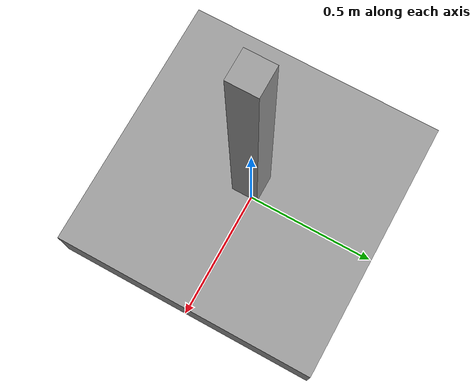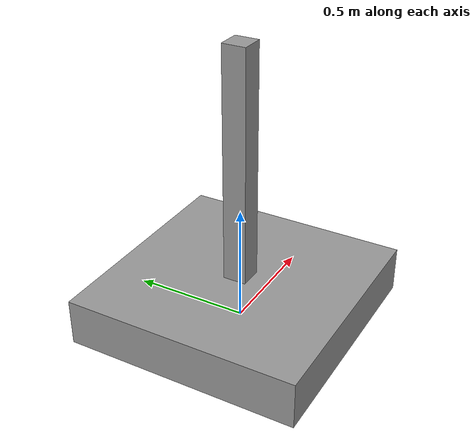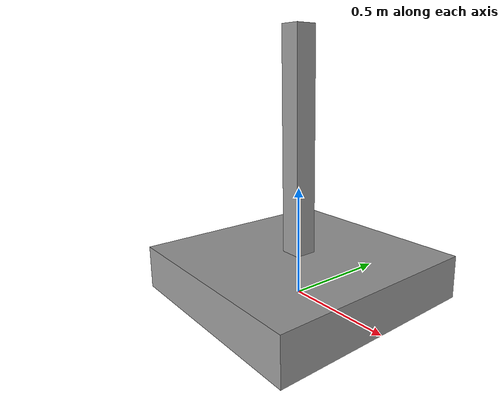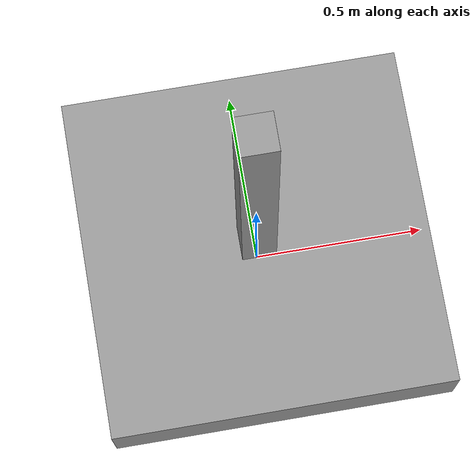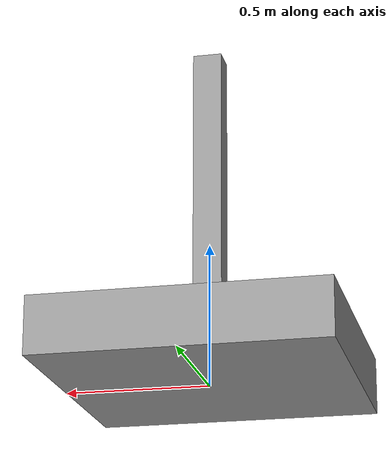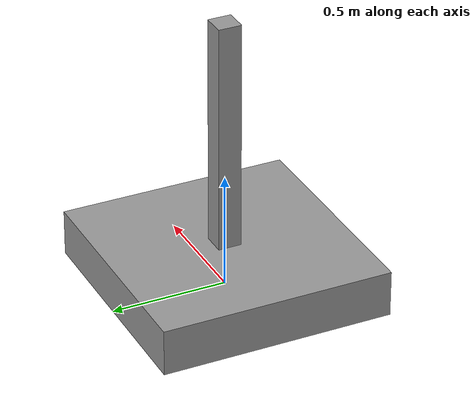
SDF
<?xml version='1.0'?>
<sdf version='1.6'>
  <model name='base_stand'>

	<link name='ground_base_link'>
      <pose frame=''>0 0 0.1 0 -0 0</pose>
      <inertial>
        <mass>1000</mass>
        <inertia>
          <ixx>0.166667</ixx>
          <ixy>0</ixy>
          <ixz>0</ixz>
          <iyy>0.166667</iyy>
          <iyz>0</iyz>
          <izz>0.166667</izz>
        </inertia>
      </inertial>
      <self_collide>0</self_collide>
      <kinematic>0</kinematic>
      <visual name='ground_base_visual'>
        <geometry>
          <box>
            <size>1 1 0.2</size>
          </box>
        </geometry>
        <material>
          <script>
            <name>Gazebo/Grey</name>
            <uri>file://media/materials/scripts/gazebo.material</uri>
          </script>
          <ambient>0.3 0.3 0.3 1</ambient>
          <diffuse>0.7 0.7 0.7 1</diffuse>
          <specular>0.01 0.01 0.01 1</specular>
          <emissive>0 0 0 1</emissive>
        </material>
        <pose frame=''>0 0 0 0 -0 0</pose>
        <cast_shadows>1</cast_shadows>
        <transparency>0</transparency>
      </visual>
      <collision name='ground_base_collision'>
        <laser_retro>0</laser_retro>
        <max_contacts>10</max_contacts>
        <pose frame=''>0 0 0 0 -0 0</pose>
        <geometry>
          <box>
            <size>1 1 0.2</size>
          </box>
        </geometry>
        <surface>
          <friction>
            <ode>
              <mu>1</mu>
              <mu2>1</mu2>
              <fdir1>0 0 0</fdir1>
              <slip1>0</slip1>
              <slip2>0</slip2>
            </ode>
            <torsional>
              <coefficient>1</coefficient>
              <patch_radius>0</patch_radius>
              <surface_radius>0</surface_radius>
              <use_patch_radius>1</use_patch_radius>
              <ode>
                <slip>0</slip>
              </ode>
            </torsional>
          </friction>
          <bounce>
            <restitution_coefficient>0</restitution_coefficient>
            <threshold>1e+06</threshold>
          </bounce>
          <contact>
            <collide_without_contact>0</collide_without_contact>
            <collide_without_contact_bitmask>1</collide_without_contact_bitmask>
            <collide_bitmask>1</collide_bitmask>
            <ode>
              <soft_cfm>0</soft_cfm>
              <soft_erp>0.2</soft_erp>
              <kp>1e+13</kp>
              <kd>1</kd>
              <max_vel>0.01</max_vel>
              <min_depth>0</min_depth>
            </ode>
            <bullet>
              <split_impulse>1</split_impulse>
              <split_impulse_penetration_threshold>-0.01</split_impulse_penetration_threshold>
              <soft_cfm>0</soft_cfm>
              <soft_erp>0.2</soft_erp>
              <kp>1e+13</kp>
              <kd>1</kd>
            </bullet>
          </contact>
        </surface>
      </collision>
    </link>

    <link name='upper_base_link'>
      <pose frame=''>0 0 0.7 0 -0 0</pose>
      <inertial>
        <mass>100</mass>
        <inertia>
          <ixx>0.166667</ixx>
          <ixy>0</ixy>
          <ixz>0</ixz>
          <iyy>0.166667</iyy>
          <iyz>0</iyz>
          <izz>0.166667</izz>
        </inertia>
      </inertial>
      <self_collide>0</self_collide>
      <kinematic>0</kinematic>
      <visual name='upper_base_visual'>
        <geometry>
          <box>
            <size>0.1 0.1 1</size>
          </box>
        </geometry>
        <material>
          <script>
            <name>Gazebo/Grey</name>
            <uri>file://media/materials/scripts/gazebo.material</uri>
          </script>
          <ambient>0.3 0.3 0.3 1</ambient>
          <diffuse>0.7 0.7 0.7 1</diffuse>
          <specular>0.01 0.01 0.01 1</specular>
          <emissive>0 0 0 1</emissive>
        </material>
        <pose frame=''>0 0 0 0 -0 0</pose>
        <cast_shadows>1</cast_shadows>
        <transparency>0</transparency>
      </visual>
      <collision name='upper_base_collision'>
        <laser_retro>0</laser_retro>
        <max_contacts>10</max_contacts>
        <pose frame=''>0 0 0 0 -0 0</pose>
        <geometry>
          <box>
            <size>0.1 0.1 1</size>
          </box>
        </geometry>
        <surface>
          <friction>
            <ode>
              <mu>1</mu>
              <mu2>1</mu2>
              <fdir1>0 0 0</fdir1>
              <slip1>0</slip1>
              <slip2>0</slip2>
            </ode>
            <torsional>
              <coefficient>1</coefficient>
              <patch_radius>0</patch_radius>
              <surface_radius>0</surface_radius>
              <use_patch_radius>1</use_patch_radius>
              <ode>
                <slip>0</slip>
              </ode>
            </torsional>
          </friction>
          <bounce>
            <restitution_coefficient>0</restitution_coefficient>
            <threshold>1e+06</threshold>
          </bounce>
          <contact>
            <collide_without_contact>0</collide_without_contact>
            <collide_without_contact_bitmask>1</collide_without_contact_bitmask>
            <collide_bitmask>1</collide_bitmask>
            <ode>
              <soft_cfm>0</soft_cfm>
              <soft_erp>0.2</soft_erp>
              <kp>1e+13</kp>
              <kd>1</kd>
              <max_vel>0.01</max_vel>
              <min_depth>0</min_depth>
            </ode>
            <bullet>
              <split_impulse>1</split_impulse>
              <split_impulse_penetration_threshold>-0.01</split_impulse_penetration_threshold>
              <soft_cfm>0</soft_cfm>
              <soft_erp>0.2</soft_erp>
              <kp>1e+13</kp>
              <kd>1</kd>
            </bullet>
          </contact>
        </surface>
      </collision>
    </link>

    <joint name="base_joint" type="fixed">
      <child>upper_base_link</child>
      <parent>ground_base_link</parent>
    </joint>

    <static>0</static>
    <allow_auto_disable>1</allow_auto_disable>
  </model>
</sdf>
